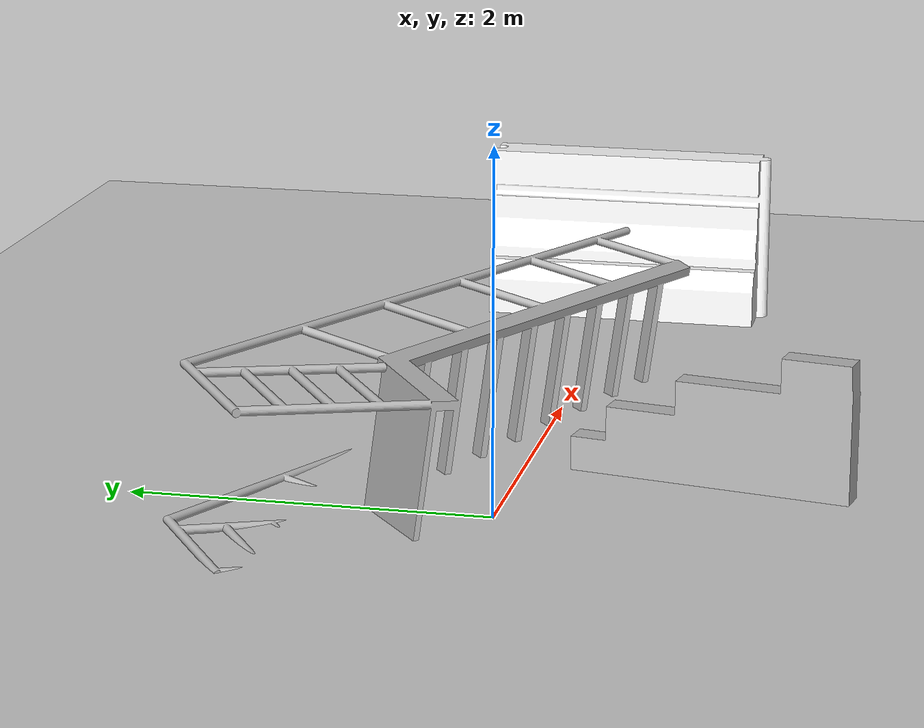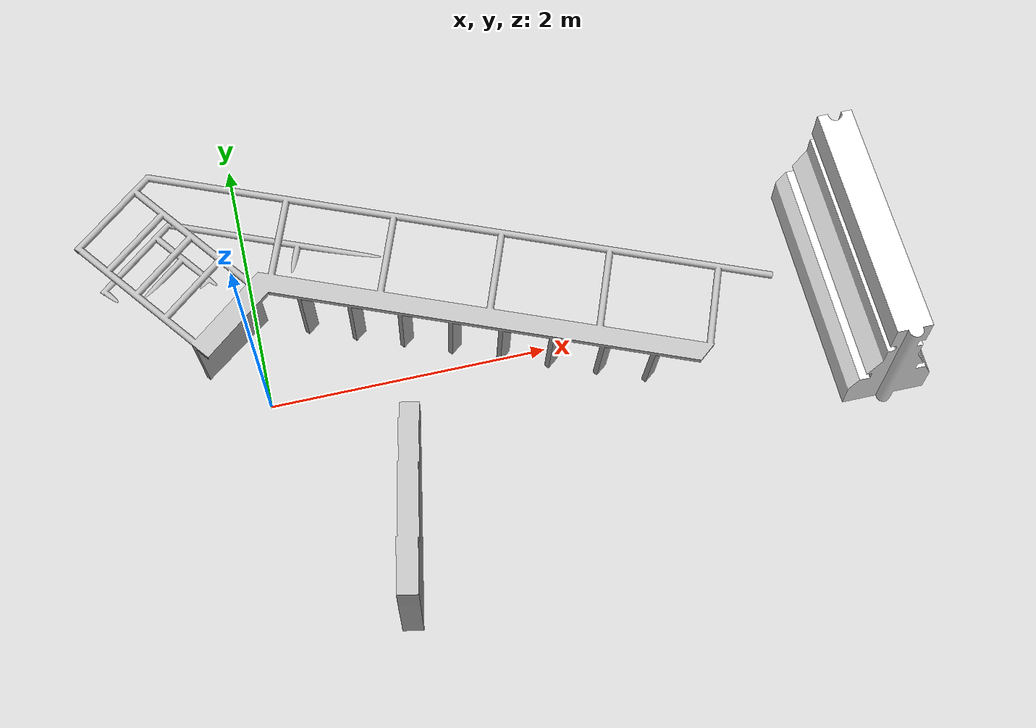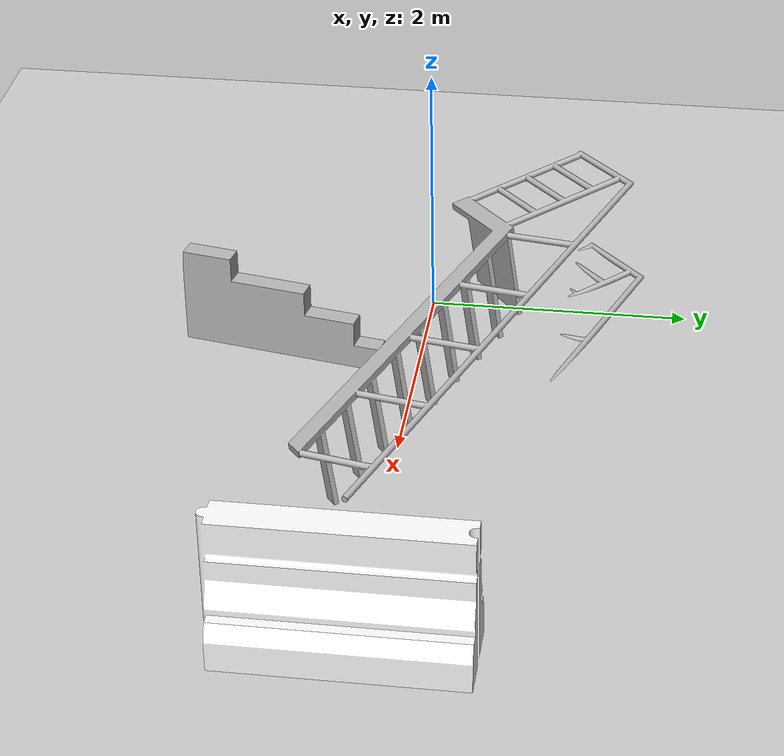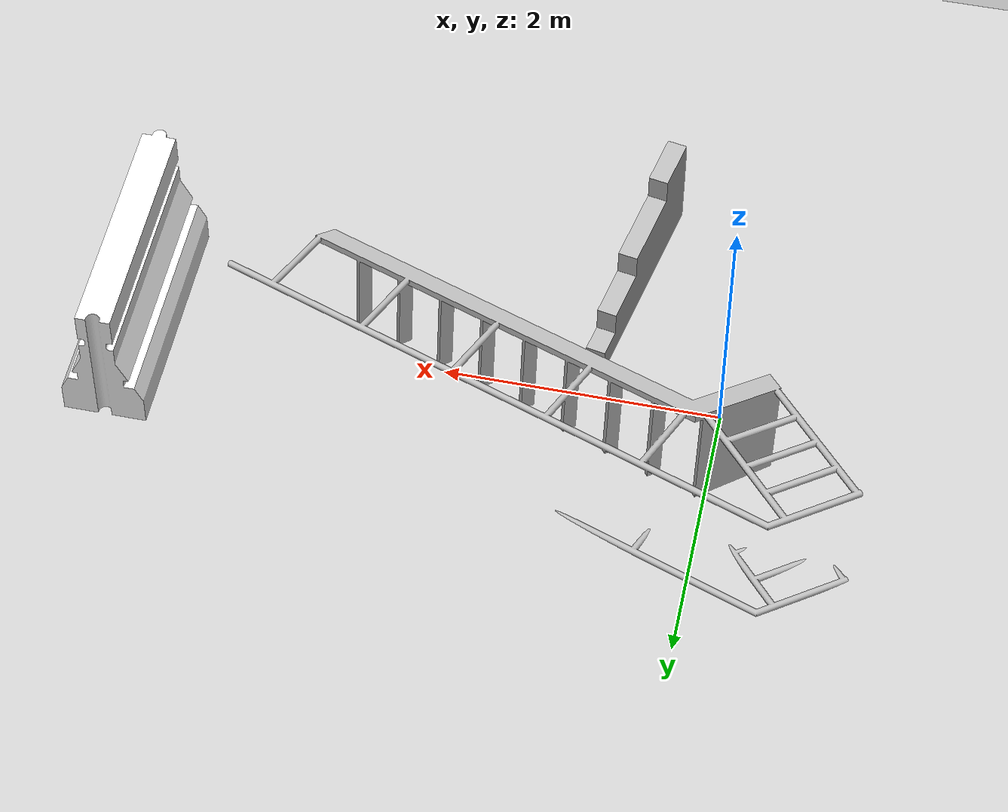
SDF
<sdf version="1.6">
 <world name="default">
  <light name="sun" type="directional">
   <pose>0 0 10 0 -0 0</pose>
   <diffuse>0.8 0.8 0.8 1</diffuse>
   <specular>0.2 0.2 0.2 1</specular>
   <attenuation>
    <range>1000</range>
    <constant>0.9</constant>
    <linear>0.01</linear>
    <quadratic>0.001</quadratic>
   </attenuation>
   <direction>-0.5 0.1 -0.9</direction>
  </light>
  <model name="ground_plane">
   <static>1</static>
   <link name="link">
    <collision name="collision">
     <geometry><plane><normal>0 0 1</normal><size>100 100</size></plane></geometry>
     <surface>
      <contact><collide_bitmask>65535</collide_bitmask></contact>
      <friction><ode><mu>100</mu><mu2>50</mu2></ode></friction>
     </surface>
    </collision>
    <visual name="visual">
     <cast_shadows>0</cast_shadows>
     <geometry><plane><normal>0 0 1</normal><size>100 100</size></plane></geometry>
     <material>
      <script><uri>file://media/materials/scripts/gazebo.material</uri><name>Gazebo/Grey</name></script>
     </material>
    </visual>
   </link>
  </model>
  <gravity>0 0 -9.8</gravity>
  <magnetic_field>6e-06 2.3e-05 -4.2e-05</magnetic_field>
  <atmosphere type="adiabatic"/>
  <physics name="default_physics" default="0" type="ode">
   <max_step_size>0.001</max_step_size>
   <real_time_factor>1</real_time_factor>
   <real_time_update_rate>1000</real_time_update_rate>
  </physics>
  <scene><ambient>0.4 0.4 0.4 1</ambient><background>0.7 0.7 0.7 1</background><shadows>1</shadows></scene>
  <audio><device>default</device></audio>
  <spherical_coordinates>
   <surface_model>EARTH_WGS84</surface_model>
   <latitude_deg>0</latitude_deg>
   <longitude_deg>0</longitude_deg>
   <elevation>0</elevation>
   <heading_deg>0</heading_deg>
  </spherical_coordinates>
  <model name="block_wall">
   <pose>0.776393 -1.19142 0.30924 0 0 -1.76079</pose>
   <static>1</static>
   <link name="blocks">
    <collision name="collision">
     <geometry><mesh><uri>model://drc_practice_block_wall/meshes/block_wall.dae</uri></mesh></geometry>
     <surface>
      <bounce><restitution_coefficient>0</restitution_coefficient><threshold>100000</threshold></bounce>
      <friction><ode><mu>100</mu><mu2>50</mu2></ode></friction>
      <contact>
       <ode><soft_cfm>0</soft_cfm><soft_erp>0.2</soft_erp><max_vel>0</max_vel><min_depth>0</min_depth></ode>
      </contact>
     </surface>
    </collision>
    <visual name="visual">
     <geometry><mesh><uri>model://drc_practice_block_wall/meshes/block_wall.dae</uri></mesh></geometry>
    </visual>
   </link>
  </model>
  <model name="drc_practice_white_jersey_barrier">
   <static>1</static>
   <link name="link">
    <visual name="visual">
     <geometry>
      <mesh><uri>model://drc_practice_white_jersey_barrier/meshes/jersey_barrier.dae</uri></mesh>
     </geometry>
    </visual>
    <collision name="collision">
     <geometry>
      <mesh><uri>model://drc_practice_white_jersey_barrier/meshes/jersey_barrier.dae</uri></mesh>
     </geometry>
    </collision>
   </link>
   <pose>4.28133 -0.011689 0 0 -0 0</pose>
  </model>
  <model name="ladder">
   <static>1</static>
   <link name="link">
    <collision name="step0">
     <pose>0 -0.96703 0.286 0 -0 0</pose>
     <geometry><box><size>0.9 0.1016 0.0381</size></box></geometry>
    </collision>
    <collision name="step1">
     <pose>0 -0.79106 0.59054 0 -0 0</pose>
     <geometry><box><size>0.9 0.1016 0.0381</size></box></geometry>
    </collision>
    <collision name="step2">
     <pose>0 -0.61509 0.89508 0 -0 0</pose>
     <geometry><box><size>0.9 0.1016 0.0381</size></box></geometry>
    </collision>
    <collision name="step3">
     <pose>0 -0.43912 1.19962 0 -0 0</pose>
     <geometry><box><size>0.9 0.1016 0.0381</size></box></geometry>
    </collision>
    <collision name="step4">
     <pose>0 -0.26315 1.50416 0 -0 0</pose>
     <geometry><box><size>0.9 0.1016 0.0381</size></box></geometry>
    </collision>
    <collision name="step5">
     <pose>0 -0.08718 1.8087 0 -0 0</pose>
     <geometry><box><size>0.9 0.1016 0.0381</size></box></geometry>
    </collision>
    <collision name="step6">
     <pose>0 0.08879 2.11324 0 -0 0</pose>
     <geometry><box><size>0.9 0.1016 0.0381</size></box></geometry>
    </collision>
    <collision name="step7">
     <pose>0 0.26476 2.41778 0 -0 0</pose>
     <geometry><box><size>0.9 0.1016 0.0381</size></box></geometry>
    </collision>
    <collision name="landing">
     <pose>0 0.73039 2.72432 0 -0 0</pose>
     <geometry><box><size>0.9 0.6096 0.0381</size></box></geometry>
    </collision>
    <collision name="left_side_wall">
     <pose>-0.43217 -0.37451 1.3386 1.0472 -0 0</pose>
     <geometry><box><size>0.0508 3.16758 0.13</size></box></geometry>
    </collision>
    <collision name="left_side_landing_wall">
     <pose>-0.43217 0.69819 2.667 0 -0 0</pose>
     <geometry><box><size>0.0508 0.67401 0.1524</size></box></geometry>
    </collision>
    <collision name="left_railing_landing_3">
     <pose>-0.433355 0.66933 3.81 1.5707 -0 0</pose>
     <geometry><cylinder><radius>0.02413</radius><length>0.73172</length></cylinder></geometry>
    </collision>
    <collision name="left_railing_landing_2">
     <pose>-0.433355 0.73166 3.5433 1.5707 -0 0</pose>
     <geometry><cylinder><radius>0.02413</radius><length>0.5588</length></cylinder></geometry>
    </collision>
    <collision name="left_railing_landing_1">
     <pose>-0.433355 0.73166 3.2766 1.5707 -0 0</pose>
     <geometry><cylinder><radius>0.02413</radius><length>0.5588</length></cylinder></geometry>
    </collision>
    <collision name="left_railing_landing_0">
     <pose>-0.433355 0.73166 3.0099 1.5707 -0 0</pose>
     <geometry><cylinder><radius>0.02413</radius><length>0.5588</length></cylinder></geometry>
    </collision>
    <collision name="left_railing_landing_upright_back">
     <pose>-0.433355 1.01088 3.2766 0 -0 0</pose>
     <geometry><cylinder><radius>0.02413</radius><length>1.0668</length></cylinder></geometry>
    </collision>
    <collision name="left_railing_landing_upright_front">
     <pose>-0.433355 0.45208 3.2766 0 -0 0</pose>
     <geometry><cylinder><radius>0.02413</radius><length>1.0668</length></cylinder></geometry>
    </collision>
    <collision name="left_railing_upright_4">
     <pose>-0.433355 0.0699 2.80986 1.03414 -0 0</pose>
     <geometry><cylinder><radius>0.02413</radius><length>0.57</length></cylinder></geometry>
    </collision>
    <collision name="left_railing_upright_3">
     <pose>-0.433355 -0.31006 2.15169 1.03414 -0 0</pose>
     <geometry><cylinder><radius>0.02413</radius><length>0.57</length></cylinder></geometry>
    </collision>
    <collision name="left_railing_upright_2">
     <pose>-0.433355 -0.6911 1.49172 1.03414 -0 0</pose>
     <geometry><cylinder><radius>0.02413</radius><length>0.57</length></cylinder></geometry>
    </collision>
    <collision name="left_railing_upright_1">
     <pose>-0.433355 -1.0732 0.82995 1.03414 -0 0</pose>
     <geometry><cylinder><radius>0.02413</radius><length>0.57</length></cylinder></geometry>
    </collision>
    <collision name="left_railing_upright_0">
     <pose>-0.433355 -1.45316 0.17179 1.03414 -0 0</pose>
     <geometry><cylinder><radius>0.02413</radius><length>0.57</length></cylinder></geometry>
    </collision>
    <collision name="left_railing_long">
     <pose>-0.433355 -0.781 1.9068 -0.523503 0 0</pose>
     <geometry><cylinder><radius>0.02413</radius><length>4.42295</length></cylinder></geometry>
    </collision>
    <collision name="right_side_wall">
     <pose>0.43217 -0.37451 1.3386 1.0472 -0 0</pose>
     <geometry><box><size>0.0508 3.16758 0.13</size></box></geometry>
    </collision>
    <collision name="right_side_landing_wall">
     <pose>0.43217 0.69819 2.667 0 -0 0</pose>
     <geometry><box><size>0.0508 0.67401 0.1524</size></box></geometry>
    </collision>
    <collision name="right_railing_landing_3">
     <pose>0.433355 0.66933 3.81 1.5707 -0 0</pose>
     <geometry><cylinder><radius>0.02413</radius><length>0.73172</length></cylinder></geometry>
    </collision>
    <collision name="right_railing_landing_2">
     <pose>0.433355 0.73166 3.5433 1.5707 -0 0</pose>
     <geometry><cylinder><radius>0.02413</radius><length>0.5588</length></cylinder></geometry>
    </collision>
    <collision name="right_railing_landing_1">
     <pose>0.433355 0.73166 3.2766 1.5707 -0 0</pose>
     <geometry><cylinder><radius>0.02413</radius><length>0.5588</length></cylinder></geometry>
    </collision>
    <collision name="right_railing_landing_0">
     <pose>0.433355 0.73166 3.0099 1.5707 -0 0</pose>
     <geometry><cylinder><radius>0.02413</radius><length>0.5588</length></cylinder></geometry>
    </collision>
    <collision name="right_railing_landing_upright_back">
     <pose>0.433355 1.01088 3.2766 0 -0 0</pose>
     <geometry><cylinder><radius>0.02413</radius><length>1.0668</length></cylinder></geometry>
    </collision>
    <collision name="right_railing_landing_upright_front">
     <pose>0.433355 0.45208 3.2766 0 -0 0</pose>
     <geometry><cylinder><radius>0.02413</radius><length>1.0668</length></cylinder></geometry>
    </collision>
    <collision name="right_railing_upright_4">
     <pose>0.433355 0.0699 2.80986 1.03414 -0 0</pose>
     <geometry><cylinder><radius>0.02413</radius><length>0.57</length></cylinder></geometry>
    </collision>
    <collision name="right_railing_upright_3">
     <pose>0.433355 -0.31006 2.15169 1.03414 -0 0</pose>
     <geometry><cylinder><radius>0.02413</radius><length>0.57</length></cylinder></geometry>
    </collision>
    <collision name="right_railing_upright_2">
     <pose>0.433355 -0.6911 1.49172 1.03414 -0 0</pose>
     <geometry><cylinder><radius>0.02413</radius><length>0.57</length></cylinder></geometry>
    </collision>
    <collision name="right_railing_upright_1">
     <pose>0.433355 -1.0732 0.82995 1.03414 -0 0</pose>
     <geometry><cylinder><radius>0.02413</radius><length>0.57</length></cylinder></geometry>
    </collision>
    <collision name="right_railing_upright_0">
     <pose>0.433355 -1.45316 0.17179 1.03414 -0 0</pose>
     <geometry><cylinder><radius>0.02413</radius><length>0.57</length></cylinder></geometry>
    </collision>
    <collision name="right_railing_long">
     <pose>0.433355 -0.781 1.9068 -0.523503 0 0</pose>
     <geometry><cylinder><radius>0.02413</radius><length>4.42295</length></cylinder></geometry>
    </collision>
    <visual name="visual">
     <geometry><mesh><uri>model://drc_practice_ladder/meshes/ladder.dae</uri></mesh></geometry>
    </visual>
   </link>
   <pose>2.09427 -1.20833 0.10631 -0.697407 1.43548 1.54064</pose>
  </model>
  <model name="coke_can">
   <link name="link">
    <inertial>
     <pose>-0.01 -0.012 0.15 0 -0 0</pose>
     <mass>0.39</mass>
     <inertia><ixx>0.00058</ixx><ixy>0</ixy><ixz>0</ixz><iyy>0.00058</iyy><iyz>0</iyz><izz>0.00019</izz></inertia>
    </inertial>
    <collision name="collision">
     <pose>0 0 -0.46 0 -0 0</pose>
     <geometry><mesh><uri>model://coke_can/meshes/coke_can.dae</uri></mesh></geometry>
     <surface>
      <friction><ode><mu>1</mu><mu2>1</mu2></ode></friction>
      <contact><ode><kp>1e+07</kp><kd>1</kd><min_depth>0.001</min_depth><max_vel>0.1</max_vel></ode></contact>
     </surface>
    </collision>
    <visual name="visual">
     <pose>0 0 -0.46 0 -0 0</pose>
     <geometry><mesh><uri>model://coke_can/meshes/coke_can.dae</uri></mesh></geometry>
    </visual>
   </link>
   <pose>0.999677 0.00798 -0.003988 -0.01578 0.003494 0.000221</pose>
  </model>
 </world>
</sdf>
